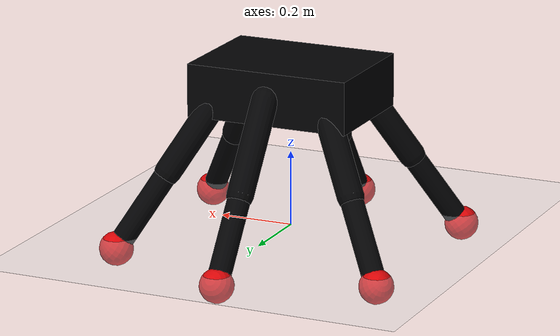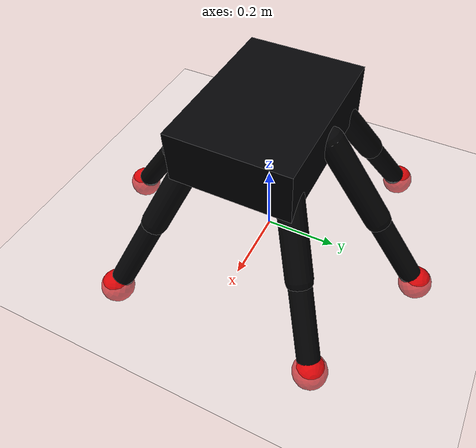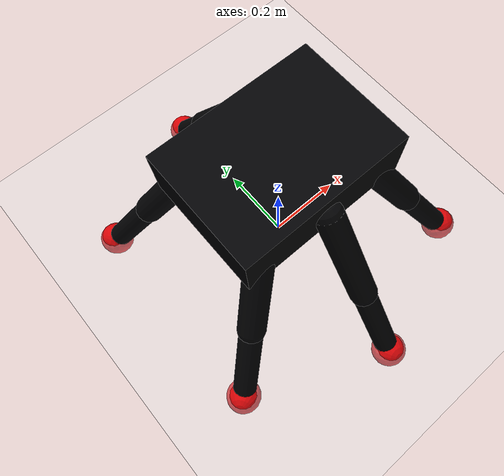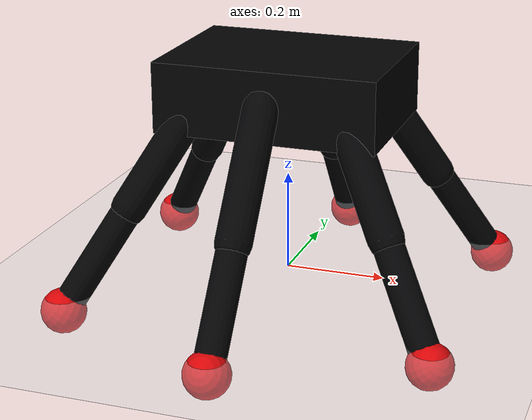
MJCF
<mujoco model="spider">
  <compiler angle="degree" autolimits="true" eulerseq="zyx"/>
  <option timestep="0.002" gravity="0 0 -9.81" integrator="implicitfast"/>

  <default>
    <joint damping="0.5" armature="0.01"/>
    <geom contype="1" conaffinity="1" friction="1 0.5 0.5" density="500" rgba="0.01 0.01 0.015 1"/>
  </default>

  <worldbody>
    <light name="main" pos="0 0 2" dir="0 0 -1"/>
    <geom name="ground" type="plane" size="12 12 0.1" rgba="0.91 0.925 0.945 1"/>

    <body name="torso" pos="0 0 0.38">
      <freejoint name="root"/>
      <geom name="torso_geom" type="box" size="0.22 0.16 0.07" rgba="0.01 0.01 0.015 1"/>
      <site name="torso_center" pos="0 0 0" size="0.02" rgba="1 0 0 1"/>

      <body name="front_left" pos="0.14 0.11 0" euler="38 55 0">
        <joint name="front_left_coxa" type="hinge" axis="0 0 1" range="-45 45"/>
        <joint name="front_left_hip" type="hinge" axis="0 1 0" range="-45 45"/>
        <geom name="front_left_thigh" type="capsule" fromto="0 0 0 0.26 0 0" size="0.035"/>
        <body name="front_left_shin" pos="0.26 0 0">
          <joint name="front_left_knee" type="hinge" axis="0 1 0" range="-80 80"/>
          <geom name="front_left_shin_geom" type="capsule" fromto="0 0 0 0.24 0 0" size="0.03"/>
          <geom name="front_left_foot" type="sphere" pos="0.24 0 0" size="0.045" rgba="0.85 0.02 0.03 1"/>
          <site name="front_left_contact_site" pos="0.24 0 0" size="0.02"/>
        </body>
      </body>

      <body name="front_right" pos="0.14 -0.11 0" euler="-38 55 0">
        <joint name="front_right_coxa" type="hinge" axis="0 0 1" range="-45 45"/>
        <joint name="front_right_hip" type="hinge" axis="0 1 0" range="-45 45"/>
        <geom name="front_right_thigh" type="capsule" fromto="0 0 0 0.26 0 0" size="0.035"/>
        <body name="front_right_shin" pos="0.26 0 0">
          <joint name="front_right_knee" type="hinge" axis="0 1 0" range="-80 80"/>
          <geom name="front_right_shin_geom" type="capsule" fromto="0 0 0 0.24 0 0" size="0.03"/>
          <geom name="front_right_foot" type="sphere" pos="0.24 0 0" size="0.045" rgba="0.85 0.02 0.03 1"/>
          <site name="front_right_contact_site" pos="0.24 0 0" size="0.02"/>
        </body>
      </body>

      <body name="middle_left" pos="0 0.16 0" euler="90 55 0">
        <joint name="middle_left_coxa" type="hinge" axis="0 0 1" range="-45 45"/>
        <joint name="middle_left_hip" type="hinge" axis="0 1 0" range="-45 45"/>
        <geom name="middle_left_thigh" type="capsule" fromto="0 0 0 0.26 0 0" size="0.035"/>
        <body name="middle_left_shin" pos="0.26 0 0">
          <joint name="middle_left_knee" type="hinge" axis="0 1 0" range="-80 80"/>
          <geom name="middle_left_shin_geom" type="capsule" fromto="0 0 0 0.24 0 0" size="0.03"/>
          <geom name="middle_left_foot" type="sphere" pos="0.24 0 0" size="0.045" rgba="0.85 0.02 0.03 1"/>
          <site name="middle_left_contact_site" pos="0.24 0 0" size="0.02"/>
        </body>
      </body>

      <body name="middle_right" pos="0 -0.16 0" euler="-90 55 0">
        <joint name="middle_right_coxa" type="hinge" axis="0 0 1" range="-45 45"/>
        <joint name="middle_right_hip" type="hinge" axis="0 1 0" range="-45 45"/>
        <geom name="middle_right_thigh" type="capsule" fromto="0 0 0 0.26 0 0" size="0.035"/>
        <body name="middle_right_shin" pos="0.26 0 0">
          <joint name="middle_right_knee" type="hinge" axis="0 1 0" range="-80 80"/>
          <geom name="middle_right_shin_geom" type="capsule" fromto="0 0 0 0.24 0 0" size="0.03"/>
          <geom name="middle_right_foot" type="sphere" pos="0.24 0 0" size="0.045" rgba="0.85 0.02 0.03 1"/>
          <site name="middle_right_contact_site" pos="0.24 0 0" size="0.02"/>
        </body>
      </body>

      <body name="rear_left" pos="-0.14 0.11 0" euler="142 55 0">
        <joint name="rear_left_coxa" type="hinge" axis="0 0 1" range="-45 45"/>
        <joint name="rear_left_hip" type="hinge" axis="0 1 0" range="-45 45"/>
        <geom name="rear_left_thigh" type="capsule" fromto="0 0 0 0.26 0 0" size="0.035"/>
        <body name="rear_left_shin" pos="0.26 0 0">
          <joint name="rear_left_knee" type="hinge" axis="0 1 0" range="-80 80"/>
          <geom name="rear_left_shin_geom" type="capsule" fromto="0 0 0 0.24 0 0" size="0.03"/>
          <geom name="rear_left_foot" type="sphere" pos="0.24 0 0" size="0.045" rgba="0.85 0.02 0.03 1"/>
          <site name="rear_left_contact_site" pos="0.24 0 0" size="0.02"/>
        </body>
      </body>

      <body name="rear_right" pos="-0.14 -0.11 0" euler="-142 55 0">
        <joint name="rear_right_coxa" type="hinge" axis="0 0 1" range="-45 45"/>
        <joint name="rear_right_hip" type="hinge" axis="0 1 0" range="-45 45"/>
        <geom name="rear_right_thigh" type="capsule" fromto="0 0 0 0.26 0 0" size="0.035"/>
        <body name="rear_right_shin" pos="0.26 0 0">
          <joint name="rear_right_knee" type="hinge" axis="0 1 0" range="-80 80"/>
          <geom name="rear_right_shin_geom" type="capsule" fromto="0 0 0 0.24 0 0" size="0.03"/>
          <geom name="rear_right_foot" type="sphere" pos="0.24 0 0" size="0.045" rgba="0.85 0.02 0.03 1"/>
          <site name="rear_right_contact_site" pos="0.24 0 0" size="0.02"/>
        </body>
      </body>
    </body>
  </worldbody>

  <actuator>
    <position name="front_left_coxa_motor" joint="front_left_coxa" kp="300" ctrlrange="-0.8 0.8"/>
    <position name="front_left_hip_motor" joint="front_left_hip" kp="300" ctrlrange="-0.8 0.8"/>
    <position name="front_left_knee_motor" joint="front_left_knee" kp="300" ctrlrange="-1.4 1.4"/>
    <position name="front_right_coxa_motor" joint="front_right_coxa" kp="300" ctrlrange="-0.8 0.8"/>
    <position name="front_right_hip_motor" joint="front_right_hip" kp="300" ctrlrange="-0.8 0.8"/>
    <position name="front_right_knee_motor" joint="front_right_knee" kp="300" ctrlrange="-1.4 1.4"/>
    <position name="middle_left_coxa_motor" joint="middle_left_coxa" kp="300" ctrlrange="-0.8 0.8"/>
    <position name="middle_left_hip_motor" joint="middle_left_hip" kp="300" ctrlrange="-0.8 0.8"/>
    <position name="middle_left_knee_motor" joint="middle_left_knee" kp="300" ctrlrange="-1.4 1.4"/>
    <position name="middle_right_coxa_motor" joint="middle_right_coxa" kp="300" ctrlrange="-0.8 0.8"/>
    <position name="middle_right_hip_motor" joint="middle_right_hip" kp="300" ctrlrange="-0.8 0.8"/>
    <position name="middle_right_knee_motor" joint="middle_right_knee" kp="300" ctrlrange="-1.4 1.4"/>
    <position name="rear_left_coxa_motor" joint="rear_left_coxa" kp="300" ctrlrange="-0.8 0.8"/>
    <position name="rear_left_hip_motor" joint="rear_left_hip" kp="300" ctrlrange="-0.8 0.8"/>
    <position name="rear_left_knee_motor" joint="rear_left_knee" kp="300" ctrlrange="-1.4 1.4"/>
    <position name="rear_right_coxa_motor" joint="rear_right_coxa" kp="300" ctrlrange="-0.8 0.8"/>
    <position name="rear_right_hip_motor" joint="rear_right_hip" kp="300" ctrlrange="-0.8 0.8"/>
    <position name="rear_right_knee_motor" joint="rear_right_knee" kp="300" ctrlrange="-1.4 1.4"/>
  </actuator>

  <sensor>
    <framequat name="torso_orientation" objtype="body" objname="torso"/>
    <framelinvel name="torso_velocity" objtype="body" objname="torso"/>
    <touch name="front_left_contact" site="front_left_contact_site"/>
    <touch name="front_right_contact" site="front_right_contact_site"/>
    <touch name="middle_left_contact" site="middle_left_contact_site"/>
    <touch name="middle_right_contact" site="middle_right_contact_site"/>
    <touch name="rear_left_contact" site="rear_left_contact_site"/>
    <touch name="rear_right_contact" site="rear_right_contact_site"/>
  </sensor>
</mujoco>
